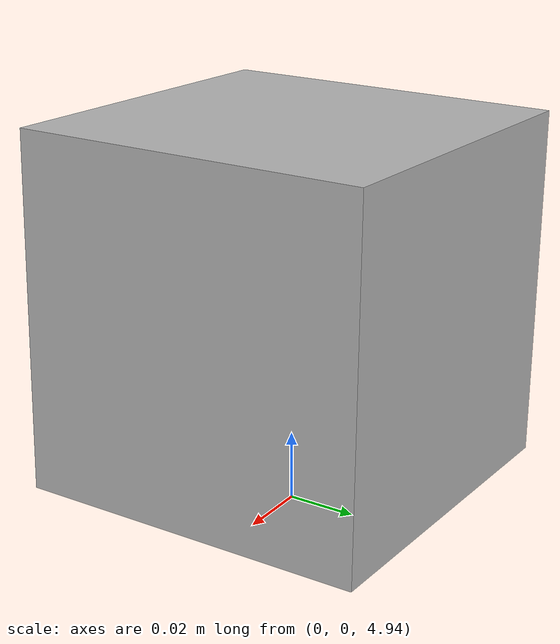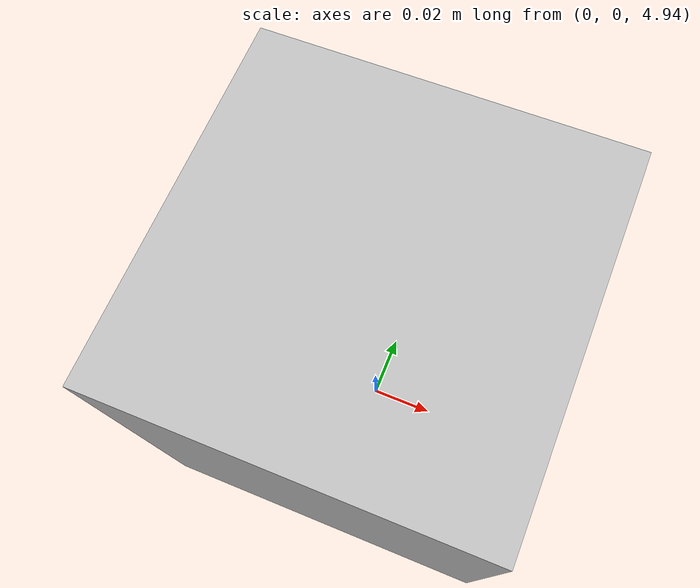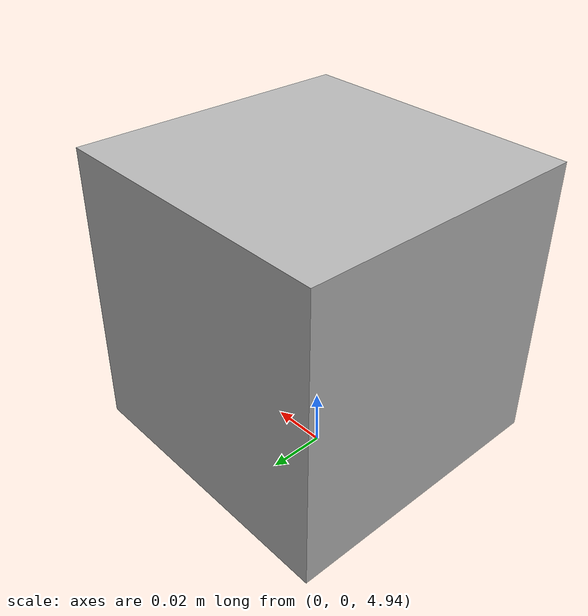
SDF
<?xml version="1.0" encoding="utf-8"?>
<sdf version="1.5">
  <world name="default">
    <!-- A global light source -->
    <include>
      <uri>model://sun</uri>
    </include>
    <!-- A ground plane -->
    <include>
      <uri>model://ground_plane</uri>
    </include>

    <model name='camera'>
      <static>true</static>
      <pose>0 0 5  0 1.545 0</pose>
      <link name='link'>
        <visual name='visual'>
          <geometry>
            <box>
              <size>0.1 0.1 0.1</size>
            </box>
          </geometry>
        </visual>

	<sensor name="kinect" type="depth">
    <update_rate>90</update_rate>
    <camera>
      <horizontal_fov>1.047198</horizontal_fov>
      <image>
        <width>1024</width>
        <height>1024</height>
        <format>R8G8B8</format>
      </image>
      <clip>
        <near>0.05</near>
        <far>20</far>
      </clip>
    </camera>
    <plugin name="depth_controller" filename="libgazebo_ros_openni_kinect.so">
      <baseline>0.2</baseline>
      <alwaysOn>true</alwaysOn>
      <updateRate>0.0</updateRate>
      <cameraName>kinect_ir</cameraName>
      <imageTopicName>/kinect/color/image_raw</imageTopicName>
      <cameraInfoTopicName>/kinect/color/camera_info</cameraInfoTopicName>
      <depthImageTopicName>/kinect/depth/image_raw</depthImageTopicName>
      <depthImageInfoTopicName>/kinect/depth/camera_info</depthImageInfoTopicName>
      <pointCloudTopicName>/kinect/depth/points</pointCloudTopicName>
      <frameName>camera_link</frameName>
      <pointCloudCutoff>0.05</pointCloudCutoff>
      <pointCloudCutoffMax>20</pointCloudCutoffMax>
      <distortionK1>0.0</distortionK1>
      <distortionK2>0.0</distortionK2>
      <distortionK3>0.0</distortionK3>
      <distortionT1>0.0</distortionT1>
      <distortionT2>0.0</distortionT2>
      <CxPrime>0</CxPrime>
      <Cx>0</Cx>
      <Cy>0</Cy>
      <focalLength>0</focalLength>
      <hackBaseline>0</hackBaseline>
    </plugin>
  </sensor>
      </link>
    </model>

  </world>
</sdf>
